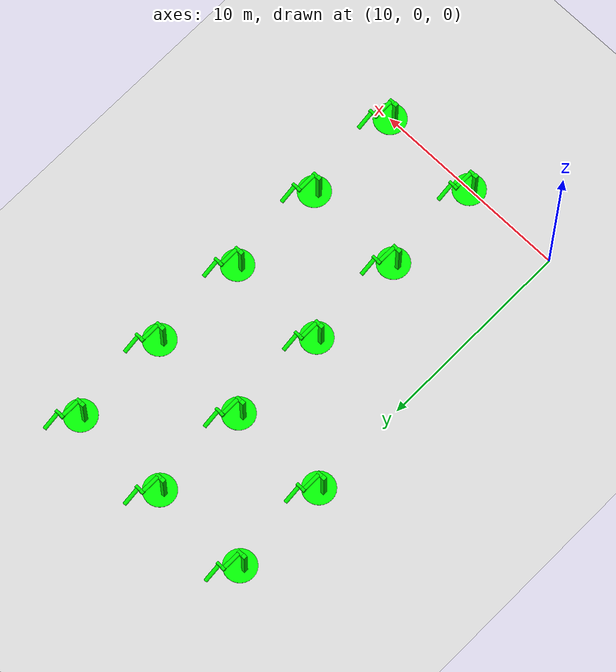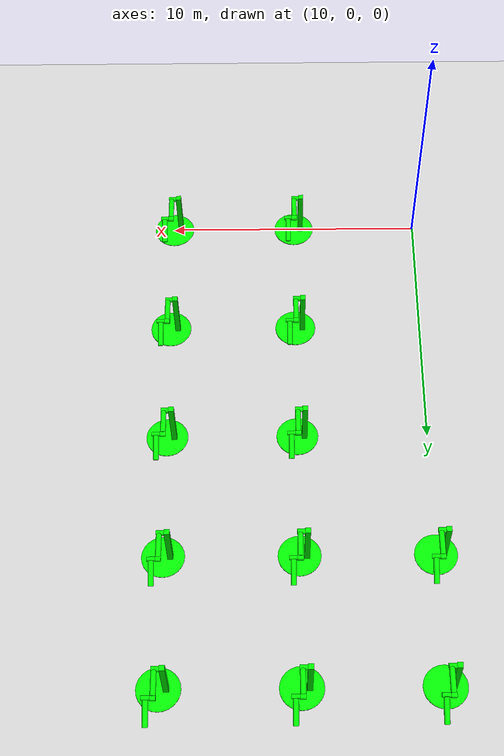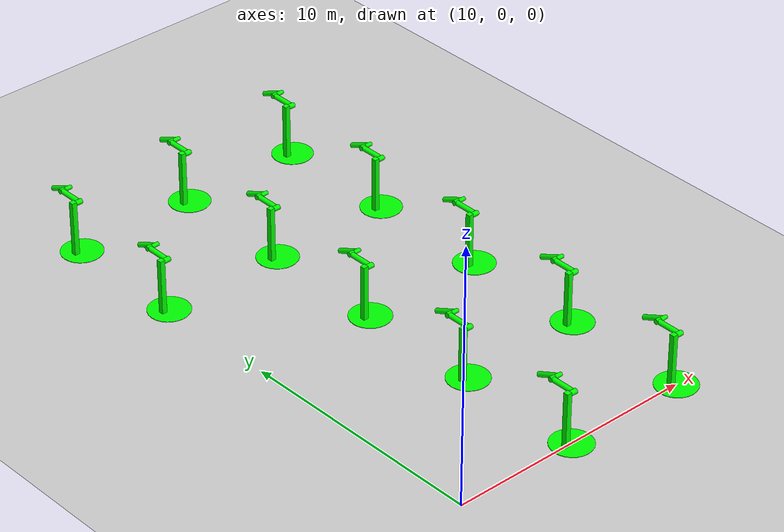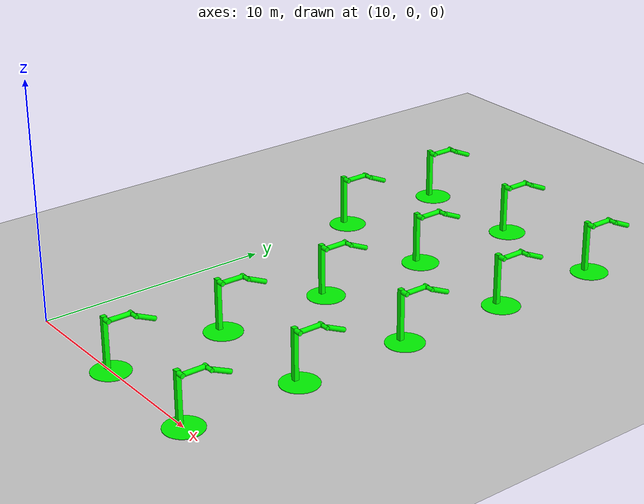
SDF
<sdf version="1.6">
 <world name="double_pendulums">
  <model name="ground_plane">
   <static>true</static>
   <link name="link">
    <collision name="collision">
     <geometry><plane><normal>0 0 1</normal><size>100 100</size></plane></geometry>
    </collision>
    <visual name="visual">
     <geometry><plane><normal>0 0 1</normal><size>100 100</size></plane></geometry>
     <material>
      <ambient>0.8 0.8 0.8 1</ambient>
      <diffuse>0.8 0.8 0.8 1</diffuse>
      <specular>0.8 0.8 0.8 1</specular>
     </material>
    </visual>
   </link>
  </model>
  <model name="dbl_pendulum_8">
   <pose>15 0 0 0 0 0</pose>
   <link name="base">
    <inertial><mass>100</mass></inertial>
    <visual name="vis_plate_on_ground">
     <pose>0 0 0.01 0 0 0</pose>
     <geometry><cylinder><radius>0.8</radius><length>0.02</length></cylinder></geometry>
     <material><ambient>0 1 0 1</ambient><diffuse>0 1 0 1</diffuse><specular>0 1 0 1</specular></material>
    </visual>
    <visual name="vis_pole">
     <pose>-0.275 0 1.1 0 0 0</pose>
     <geometry><box><size>0.2 0.2 2.2</size></box></geometry>
     <material><ambient>0 1 0 1</ambient><diffuse>0 1 0 1</diffuse><specular>0 1 0 1</specular></material>
    </visual>
    <collision name="col_plate_on_ground">
     <pose>0 0 0.01 0 0 0</pose>
     <geometry><cylinder><radius>0.8</radius><length>0.02</length></cylinder></geometry>
    </collision>
    <collision name="col_pole">
     <pose>-0.275 0 1.1 0 0 0</pose>
     <geometry><box><size>0.2 0.2 2.2</size></box></geometry>
    </collision>
   </link>
   <link name="upper_link">
    <pose>0 0 2.1 -1.5708 0 0</pose>
    <inertial><pose>0 0 0.5 0 0 0</pose></inertial>
    <visual name="vis_upper_joint">
     <pose>-0.05 0 0 0 1.5708 0</pose>
     <geometry><cylinder><radius>0.1</radius><length>0.3</length></cylinder></geometry>
     <material><ambient>0 1 0 1</ambient><diffuse>0 1 0 1</diffuse><specular>0 1 0 1</specular></material>
    </visual>
    <visual name="vis_lower_joint">
     <pose>0 0 1.0 0 1.5708 0</pose>
     <geometry><cylinder><radius>0.1</radius><length>0.2</length></cylinder></geometry>
     <material><ambient>0 1 0 1</ambient><diffuse>0 1 0 1</diffuse><specular>0 1 0 1</specular></material>
    </visual>
    <visual name="vis_cylinder">
     <pose>0 0 0.5 0 0 0</pose>
     <geometry><cylinder><radius>0.1</radius><length>0.9</length></cylinder></geometry>
     <material><ambient>0 1 0 1</ambient><diffuse>0 1 0 1</diffuse><specular>0 1 0 1</specular></material>
    </visual>
    <collision name="col_upper_joint">
     <pose>-0.05 0 0 0 1.5708 0</pose>
     <geometry><cylinder><radius>0.1</radius><length>0.3</length></cylinder></geometry>
    </collision>
    <collision name="col_lower_joint">
     <pose>0 0 1.0 0 1.5708 0</pose>
     <geometry><cylinder><radius>0.1</radius><length>0.2</length></cylinder></geometry>
    </collision>
    <collision name="col_cylinder">
     <pose>0 0 0.5 0 0 0</pose>
     <geometry><cylinder><radius>0.1</radius><length>0.9</length></cylinder></geometry>
    </collision>
   </link>
   <link name="lower_link">
    <pose>0.25 1.0 2.1 -2 0 0</pose>
    <inertial><pose>0 0 0.5 0 0 0</pose></inertial>
    <visual name="vis_lower_joint">
     <pose>0 0 0 0 1.5708 0</pose>
     <geometry><cylinder><radius>0.08</radius><length>0.3</length></cylinder></geometry>
     <material><ambient>0 1 0 1</ambient><diffuse>0 1 0 1</diffuse><specular>0 1 0 1</specular></material>
    </visual>
    <visual name="vis_cylinder">
     <pose>0 0 0.5 0 0 0</pose>
     <geometry><cylinder><radius>0.1</radius><length>0.9</length></cylinder></geometry>
     <material><ambient>0 1 0 1</ambient><diffuse>0 1 0 1</diffuse><specular>0 1 0 1</specular></material>
    </visual>
    <collision name="col_lower_joint">
     <pose>0 0 0 0 1.5708 0</pose>
     <geometry><cylinder><radius>0.08</radius><length>0.3</length></cylinder></geometry>
    </collision>
    <collision name="col_cylinder">
     <pose>0 0 0.5 0 0 0</pose>
     <geometry><cylinder><radius>0.1</radius><length>0.9</length></cylinder></geometry>
    </collision>
   </link>
   <joint name="upper_joint" type="revolute">
    <parent>base</parent>
    <child>upper_link</child>
    <axis><xyz>1.0 0 0</xyz></axis>
   </joint>
   <joint name="lower_joint" type="revolute">
    <parent>upper_link</parent>
    <child>lower_link</child>
    <axis><xyz>1.0 0 0</xyz></axis>
   </joint>
  </model>
  <model name="dbl_pendulum_9">
   <pose>20 0 0 0 0 0</pose>
   <link name="base">
    <inertial><mass>100</mass></inertial>
    <visual name="vis_plate_on_ground">
     <pose>0 0 0.01 0 0 0</pose>
     <geometry><cylinder><radius>0.8</radius><length>0.02</length></cylinder></geometry>
     <material><ambient>0 1 0 1</ambient><diffuse>0 1 0 1</diffuse><specular>0 1 0 1</specular></material>
    </visual>
    <visual name="vis_pole">
     <pose>-0.275 0 1.1 0 0 0</pose>
     <geometry><box><size>0.2 0.2 2.2</size></box></geometry>
     <material><ambient>0 1 0 1</ambient><diffuse>0 1 0 1</diffuse><specular>0 1 0 1</specular></material>
    </visual>
    <collision name="col_plate_on_ground">
     <pose>0 0 0.01 0 0 0</pose>
     <geometry><cylinder><radius>0.8</radius><length>0.02</length></cylinder></geometry>
    </collision>
    <collision name="col_pole">
     <pose>-0.275 0 1.1 0 0 0</pose>
     <geometry><box><size>0.2 0.2 2.2</size></box></geometry>
    </collision>
   </link>
   <link name="upper_link">
    <pose>0 0 2.1 -1.5708 0 0</pose>
    <inertial><pose>0 0 0.5 0 0 0</pose></inertial>
    <visual name="vis_upper_joint">
     <pose>-0.05 0 0 0 1.5708 0</pose>
     <geometry><cylinder><radius>0.1</radius><length>0.3</length></cylinder></geometry>
     <material><ambient>0 1 0 1</ambient><diffuse>0 1 0 1</diffuse><specular>0 1 0 1</specular></material>
    </visual>
    <visual name="vis_lower_joint">
     <pose>0 0 1.0 0 1.5708 0</pose>
     <geometry><cylinder><radius>0.1</radius><length>0.2</length></cylinder></geometry>
     <material><ambient>0 1 0 1</ambient><diffuse>0 1 0 1</diffuse><specular>0 1 0 1</specular></material>
    </visual>
    <visual name="vis_cylinder">
     <pose>0 0 0.5 0 0 0</pose>
     <geometry><cylinder><radius>0.1</radius><length>0.9</length></cylinder></geometry>
     <material><ambient>0 1 0 1</ambient><diffuse>0 1 0 1</diffuse><specular>0 1 0 1</specular></material>
    </visual>
    <collision name="col_upper_joint">
     <pose>-0.05 0 0 0 1.5708 0</pose>
     <geometry><cylinder><radius>0.1</radius><length>0.3</length></cylinder></geometry>
    </collision>
    <collision name="col_lower_joint">
     <pose>0 0 1.0 0 1.5708 0</pose>
     <geometry><cylinder><radius>0.1</radius><length>0.2</length></cylinder></geometry>
    </collision>
    <collision name="col_cylinder">
     <pose>0 0 0.5 0 0 0</pose>
     <geometry><cylinder><radius>0.1</radius><length>0.9</length></cylinder></geometry>
    </collision>
   </link>
   <link name="lower_link">
    <pose>0.25 1.0 2.1 -2 0 0</pose>
    <inertial><pose>0 0 0.5 0 0 0</pose></inertial>
    <visual name="vis_lower_joint">
     <pose>0 0 0 0 1.5708 0</pose>
     <geometry><cylinder><radius>0.08</radius><length>0.3</length></cylinder></geometry>
     <material><ambient>0 1 0 1</ambient><diffuse>0 1 0 1</diffuse><specular>0 1 0 1</specular></material>
    </visual>
    <visual name="vis_cylinder">
     <pose>0 0 0.5 0 0 0</pose>
     <geometry><cylinder><radius>0.1</radius><length>0.9</length></cylinder></geometry>
     <material><ambient>0 1 0 1</ambient><diffuse>0 1 0 1</diffuse><specular>0 1 0 1</specular></material>
    </visual>
    <collision name="col_lower_joint">
     <pose>0 0 0 0 1.5708 0</pose>
     <geometry><cylinder><radius>0.08</radius><length>0.3</length></cylinder></geometry>
    </collision>
    <collision name="col_cylinder">
     <pose>0 0 0.5 0 0 0</pose>
     <geometry><cylinder><radius>0.1</radius><length>0.9</length></cylinder></geometry>
    </collision>
   </link>
   <joint name="upper_joint" type="revolute">
    <parent>base</parent>
    <child>upper_link</child>
    <axis><xyz>1.0 0 0</xyz></axis>
   </joint>
   <joint name="lower_joint" type="revolute">
    <parent>upper_link</parent>
    <child>lower_link</child>
    <axis><xyz>1.0 0 0</xyz></axis>
   </joint>
  </model>
  <model name="dbl_pendulum_18">
   <pose>15 5 0 0 0 0</pose>
   <link name="base">
    <inertial><mass>100</mass></inertial>
    <visual name="vis_plate_on_ground">
     <pose>0 0 0.01 0 0 0</pose>
     <geometry><cylinder><radius>0.8</radius><length>0.02</length></cylinder></geometry>
     <material><ambient>0 1 0 1</ambient><diffuse>0 1 0 1</diffuse><specular>0 1 0 1</specular></material>
    </visual>
    <visual name="vis_pole">
     <pose>-0.275 0 1.1 0 0 0</pose>
     <geometry><box><size>0.2 0.2 2.2</size></box></geometry>
     <material><ambient>0 1 0 1</ambient><diffuse>0 1 0 1</diffuse><specular>0 1 0 1</specular></material>
    </visual>
    <collision name="col_plate_on_ground">
     <pose>0 0 0.01 0 0 0</pose>
     <geometry><cylinder><radius>0.8</radius><length>0.02</length></cylinder></geometry>
    </collision>
    <collision name="col_pole">
     <pose>-0.275 0 1.1 0 0 0</pose>
     <geometry><box><size>0.2 0.2 2.2</size></box></geometry>
    </collision>
   </link>
   <link name="upper_link">
    <pose>0 0 2.1 -1.5708 0 0</pose>
    <inertial><pose>0 0 0.5 0 0 0</pose></inertial>
    <visual name="vis_upper_joint">
     <pose>-0.05 0 0 0 1.5708 0</pose>
     <geometry><cylinder><radius>0.1</radius><length>0.3</length></cylinder></geometry>
     <material><ambient>0 1 0 1</ambient><diffuse>0 1 0 1</diffuse><specular>0 1 0 1</specular></material>
    </visual>
    <visual name="vis_lower_joint">
     <pose>0 0 1.0 0 1.5708 0</pose>
     <geometry><cylinder><radius>0.1</radius><length>0.2</length></cylinder></geometry>
     <material><ambient>0 1 0 1</ambient><diffuse>0 1 0 1</diffuse><specular>0 1 0 1</specular></material>
    </visual>
    <visual name="vis_cylinder">
     <pose>0 0 0.5 0 0 0</pose>
     <geometry><cylinder><radius>0.1</radius><length>0.9</length></cylinder></geometry>
     <material><ambient>0 1 0 1</ambient><diffuse>0 1 0 1</diffuse><specular>0 1 0 1</specular></material>
    </visual>
    <collision name="col_upper_joint">
     <pose>-0.05 0 0 0 1.5708 0</pose>
     <geometry><cylinder><radius>0.1</radius><length>0.3</length></cylinder></geometry>
    </collision>
    <collision name="col_lower_joint">
     <pose>0 0 1.0 0 1.5708 0</pose>
     <geometry><cylinder><radius>0.1</radius><length>0.2</length></cylinder></geometry>
    </collision>
    <collision name="col_cylinder">
     <pose>0 0 0.5 0 0 0</pose>
     <geometry><cylinder><radius>0.1</radius><length>0.9</length></cylinder></geometry>
    </collision>
   </link>
   <link name="lower_link">
    <pose>0.25 1.0 2.1 -2 0 0</pose>
    <inertial><pose>0 0 0.5 0 0 0</pose></inertial>
    <visual name="vis_lower_joint">
     <pose>0 0 0 0 1.5708 0</pose>
     <geometry><cylinder><radius>0.08</radius><length>0.3</length></cylinder></geometry>
     <material><ambient>0 1 0 1</ambient><diffuse>0 1 0 1</diffuse><specular>0 1 0 1</specular></material>
    </visual>
    <visual name="vis_cylinder">
     <pose>0 0 0.5 0 0 0</pose>
     <geometry><cylinder><radius>0.1</radius><length>0.9</length></cylinder></geometry>
     <material><ambient>0 1 0 1</ambient><diffuse>0 1 0 1</diffuse><specular>0 1 0 1</specular></material>
    </visual>
    <collision name="col_lower_joint">
     <pose>0 0 0 0 1.5708 0</pose>
     <geometry><cylinder><radius>0.08</radius><length>0.3</length></cylinder></geometry>
    </collision>
    <collision name="col_cylinder">
     <pose>0 0 0.5 0 0 0</pose>
     <geometry><cylinder><radius>0.1</radius><length>0.9</length></cylinder></geometry>
    </collision>
   </link>
   <joint name="upper_joint" type="revolute">
    <parent>base</parent>
    <child>upper_link</child>
    <axis><xyz>1.0 0 0</xyz></axis>
   </joint>
   <joint name="lower_joint" type="revolute">
    <parent>upper_link</parent>
    <child>lower_link</child>
    <axis><xyz>1.0 0 0</xyz></axis>
   </joint>
  </model>
  <model name="dbl_pendulum_19">
   <pose>20 5 0 0 0 0</pose>
   <link name="base">
    <inertial><mass>100</mass></inertial>
    <visual name="vis_plate_on_ground">
     <pose>0 0 0.01 0 0 0</pose>
     <geometry><cylinder><radius>0.8</radius><length>0.02</length></cylinder></geometry>
     <material><ambient>0 1 0 1</ambient><diffuse>0 1 0 1</diffuse><specular>0 1 0 1</specular></material>
    </visual>
    <visual name="vis_pole">
     <pose>-0.275 0 1.1 0 0 0</pose>
     <geometry><box><size>0.2 0.2 2.2</size></box></geometry>
     <material><ambient>0 1 0 1</ambient><diffuse>0 1 0 1</diffuse><specular>0 1 0 1</specular></material>
    </visual>
    <collision name="col_plate_on_ground">
     <pose>0 0 0.01 0 0 0</pose>
     <geometry><cylinder><radius>0.8</radius><length>0.02</length></cylinder></geometry>
    </collision>
    <collision name="col_pole">
     <pose>-0.275 0 1.1 0 0 0</pose>
     <geometry><box><size>0.2 0.2 2.2</size></box></geometry>
    </collision>
   </link>
   <link name="upper_link">
    <pose>0 0 2.1 -1.5708 0 0</pose>
    <inertial><pose>0 0 0.5 0 0 0</pose></inertial>
    <visual name="vis_upper_joint">
     <pose>-0.05 0 0 0 1.5708 0</pose>
     <geometry><cylinder><radius>0.1</radius><length>0.3</length></cylinder></geometry>
     <material><ambient>0 1 0 1</ambient><diffuse>0 1 0 1</diffuse><specular>0 1 0 1</specular></material>
    </visual>
    <visual name="vis_lower_joint">
     <pose>0 0 1.0 0 1.5708 0</pose>
     <geometry><cylinder><radius>0.1</radius><length>0.2</length></cylinder></geometry>
     <material><ambient>0 1 0 1</ambient><diffuse>0 1 0 1</diffuse><specular>0 1 0 1</specular></material>
    </visual>
    <visual name="vis_cylinder">
     <pose>0 0 0.5 0 0 0</pose>
     <geometry><cylinder><radius>0.1</radius><length>0.9</length></cylinder></geometry>
     <material><ambient>0 1 0 1</ambient><diffuse>0 1 0 1</diffuse><specular>0 1 0 1</specular></material>
    </visual>
    <collision name="col_upper_joint">
     <pose>-0.05 0 0 0 1.5708 0</pose>
     <geometry><cylinder><radius>0.1</radius><length>0.3</length></cylinder></geometry>
    </collision>
    <collision name="col_lower_joint">
     <pose>0 0 1.0 0 1.5708 0</pose>
     <geometry><cylinder><radius>0.1</radius><length>0.2</length></cylinder></geometry>
    </collision>
    <collision name="col_cylinder">
     <pose>0 0 0.5 0 0 0</pose>
     <geometry><cylinder><radius>0.1</radius><length>0.9</length></cylinder></geometry>
    </collision>
   </link>
   <link name="lower_link">
    <pose>0.25 1.0 2.1 -2 0 0</pose>
    <inertial><pose>0 0 0.5 0 0 0</pose></inertial>
    <visual name="vis_lower_joint">
     <pose>0 0 0 0 1.5708 0</pose>
     <geometry><cylinder><radius>0.08</radius><length>0.3</length></cylinder></geometry>
     <material><ambient>0 1 0 1</ambient><diffuse>0 1 0 1</diffuse><specular>0 1 0 1</specular></material>
    </visual>
    <visual name="vis_cylinder">
     <pose>0 0 0.5 0 0 0</pose>
     <geometry><cylinder><radius>0.1</radius><length>0.9</length></cylinder></geometry>
     <material><ambient>0 1 0 1</ambient><diffuse>0 1 0 1</diffuse><specular>0 1 0 1</specular></material>
    </visual>
    <collision name="col_lower_joint">
     <pose>0 0 0 0 1.5708 0</pose>
     <geometry><cylinder><radius>0.08</radius><length>0.3</length></cylinder></geometry>
    </collision>
    <collision name="col_cylinder">
     <pose>0 0 0.5 0 0 0</pose>
     <geometry><cylinder><radius>0.1</radius><length>0.9</length></cylinder></geometry>
    </collision>
   </link>
   <joint name="upper_joint" type="revolute">
    <parent>base</parent>
    <child>upper_link</child>
    <axis><xyz>1.0 0 0</xyz></axis>
   </joint>
   <joint name="lower_joint" type="revolute">
    <parent>upper_link</parent>
    <child>lower_link</child>
    <axis><xyz>1.0 0 0</xyz></axis>
   </joint>
  </model>
  <model name="dbl_pendulum_28">
   <pose>15 10 0 0 0 0</pose>
   <link name="base">
    <inertial><mass>100</mass></inertial>
    <visual name="vis_plate_on_ground">
     <pose>0 0 0.01 0 0 0</pose>
     <geometry><cylinder><radius>0.8</radius><length>0.02</length></cylinder></geometry>
     <material><ambient>0 1 0 1</ambient><diffuse>0 1 0 1</diffuse><specular>0 1 0 1</specular></material>
    </visual>
    <visual name="vis_pole">
     <pose>-0.275 0 1.1 0 0 0</pose>
     <geometry><box><size>0.2 0.2 2.2</size></box></geometry>
     <material><ambient>0 1 0 1</ambient><diffuse>0 1 0 1</diffuse><specular>0 1 0 1</specular></material>
    </visual>
    <collision name="col_plate_on_ground">
     <pose>0 0 0.01 0 0 0</pose>
     <geometry><cylinder><radius>0.8</radius><length>0.02</length></cylinder></geometry>
    </collision>
    <collision name="col_pole">
     <pose>-0.275 0 1.1 0 0 0</pose>
     <geometry><box><size>0.2 0.2 2.2</size></box></geometry>
    </collision>
   </link>
   <link name="upper_link">
    <pose>0 0 2.1 -1.5708 0 0</pose>
    <inertial><pose>0 0 0.5 0 0 0</pose></inertial>
    <visual name="vis_upper_joint">
     <pose>-0.05 0 0 0 1.5708 0</pose>
     <geometry><cylinder><radius>0.1</radius><length>0.3</length></cylinder></geometry>
     <material><ambient>0 1 0 1</ambient><diffuse>0 1 0 1</diffuse><specular>0 1 0 1</specular></material>
    </visual>
    <visual name="vis_lower_joint">
     <pose>0 0 1.0 0 1.5708 0</pose>
     <geometry><cylinder><radius>0.1</radius><length>0.2</length></cylinder></geometry>
     <material><ambient>0 1 0 1</ambient><diffuse>0 1 0 1</diffuse><specular>0 1 0 1</specular></material>
    </visual>
    <visual name="vis_cylinder">
     <pose>0 0 0.5 0 0 0</pose>
     <geometry><cylinder><radius>0.1</radius><length>0.9</length></cylinder></geometry>
     <material><ambient>0 1 0 1</ambient><diffuse>0 1 0 1</diffuse><specular>0 1 0 1</specular></material>
    </visual>
    <collision name="col_upper_joint">
     <pose>-0.05 0 0 0 1.5708 0</pose>
     <geometry><cylinder><radius>0.1</radius><length>0.3</length></cylinder></geometry>
    </collision>
    <collision name="col_lower_joint">
     <pose>0 0 1.0 0 1.5708 0</pose>
     <geometry><cylinder><radius>0.1</radius><length>0.2</length></cylinder></geometry>
    </collision>
    <collision name="col_cylinder">
     <pose>0 0 0.5 0 0 0</pose>
     <geometry><cylinder><radius>0.1</radius><length>0.9</length></cylinder></geometry>
    </collision>
   </link>
   <link name="lower_link">
    <pose>0.25 1.0 2.1 -2 0 0</pose>
    <inertial><pose>0 0 0.5 0 0 0</pose></inertial>
    <visual name="vis_lower_joint">
     <pose>0 0 0 0 1.5708 0</pose>
     <geometry><cylinder><radius>0.08</radius><length>0.3</length></cylinder></geometry>
     <material><ambient>0 1 0 1</ambient><diffuse>0 1 0 1</diffuse><specular>0 1 0 1</specular></material>
    </visual>
    <visual name="vis_cylinder">
     <pose>0 0 0.5 0 0 0</pose>
     <geometry><cylinder><radius>0.1</radius><length>0.9</length></cylinder></geometry>
     <material><ambient>0 1 0 1</ambient><diffuse>0 1 0 1</diffuse><specular>0 1 0 1</specular></material>
    </visual>
    <collision name="col_lower_joint">
     <pose>0 0 0 0 1.5708 0</pose>
     <geometry><cylinder><radius>0.08</radius><length>0.3</length></cylinder></geometry>
    </collision>
    <collision name="col_cylinder">
     <pose>0 0 0.5 0 0 0</pose>
     <geometry><cylinder><radius>0.1</radius><length>0.9</length></cylinder></geometry>
    </collision>
   </link>
   <joint name="upper_joint" type="revolute">
    <parent>base</parent>
    <child>upper_link</child>
    <axis><xyz>1.0 0 0</xyz></axis>
   </joint>
   <joint name="lower_joint" type="revolute">
    <parent>upper_link</parent>
    <child>lower_link</child>
    <axis><xyz>1.0 0 0</xyz></axis>
   </joint>
  </model>
  <model name="dbl_pendulum_29">
   <pose>20 10 0 0 0 0</pose>
   <link name="base">
    <inertial><mass>100</mass></inertial>
    <visual name="vis_plate_on_ground">
     <pose>0 0 0.01 0 0 0</pose>
     <geometry><cylinder><radius>0.8</radius><length>0.02</length></cylinder></geometry>
     <material><ambient>0 1 0 1</ambient><diffuse>0 1 0 1</diffuse><specular>0 1 0 1</specular></material>
    </visual>
    <visual name="vis_pole">
     <pose>-0.275 0 1.1 0 0 0</pose>
     <geometry><box><size>0.2 0.2 2.2</size></box></geometry>
     <material><ambient>0 1 0 1</ambient><diffuse>0 1 0 1</diffuse><specular>0 1 0 1</specular></material>
    </visual>
    <collision name="col_plate_on_ground">
     <pose>0 0 0.01 0 0 0</pose>
     <geometry><cylinder><radius>0.8</radius><length>0.02</length></cylinder></geometry>
    </collision>
    <collision name="col_pole">
     <pose>-0.275 0 1.1 0 0 0</pose>
     <geometry><box><size>0.2 0.2 2.2</size></box></geometry>
    </collision>
   </link>
   <link name="upper_link">
    <pose>0 0 2.1 -1.5708 0 0</pose>
    <inertial><pose>0 0 0.5 0 0 0</pose></inertial>
    <visual name="vis_upper_joint">
     <pose>-0.05 0 0 0 1.5708 0</pose>
     <geometry><cylinder><radius>0.1</radius><length>0.3</length></cylinder></geometry>
     <material><ambient>0 1 0 1</ambient><diffuse>0 1 0 1</diffuse><specular>0 1 0 1</specular></material>
    </visual>
    <visual name="vis_lower_joint">
     <pose>0 0 1.0 0 1.5708 0</pose>
     <geometry><cylinder><radius>0.1</radius><length>0.2</length></cylinder></geometry>
     <material><ambient>0 1 0 1</ambient><diffuse>0 1 0 1</diffuse><specular>0 1 0 1</specular></material>
    </visual>
    <visual name="vis_cylinder">
     <pose>0 0 0.5 0 0 0</pose>
     <geometry><cylinder><radius>0.1</radius><length>0.9</length></cylinder></geometry>
     <material><ambient>0 1 0 1</ambient><diffuse>0 1 0 1</diffuse><specular>0 1 0 1</specular></material>
    </visual>
    <collision name="col_upper_joint">
     <pose>-0.05 0 0 0 1.5708 0</pose>
     <geometry><cylinder><radius>0.1</radius><length>0.3</length></cylinder></geometry>
    </collision>
    <collision name="col_lower_joint">
     <pose>0 0 1.0 0 1.5708 0</pose>
     <geometry><cylinder><radius>0.1</radius><length>0.2</length></cylinder></geometry>
    </collision>
    <collision name="col_cylinder">
     <pose>0 0 0.5 0 0 0</pose>
     <geometry><cylinder><radius>0.1</radius><length>0.9</length></cylinder></geometry>
    </collision>
   </link>
   <link name="lower_link">
    <pose>0.25 1.0 2.1 -2 0 0</pose>
    <inertial><pose>0 0 0.5 0 0 0</pose></inertial>
    <visual name="vis_lower_joint">
     <pose>0 0 0 0 1.5708 0</pose>
     <geometry><cylinder><radius>0.08</radius><length>0.3</length></cylinder></geometry>
     <material><ambient>0 1 0 1</ambient><diffuse>0 1 0 1</diffuse><specular>0 1 0 1</specular></material>
    </visual>
    <visual name="vis_cylinder">
     <pose>0 0 0.5 0 0 0</pose>
     <geometry><cylinder><radius>0.1</radius><length>0.9</length></cylinder></geometry>
     <material><ambient>0 1 0 1</ambient><diffuse>0 1 0 1</diffuse><specular>0 1 0 1</specular></material>
    </visual>
    <collision name="col_lower_joint">
     <pose>0 0 0 0 1.5708 0</pose>
     <geometry><cylinder><radius>0.08</radius><length>0.3</length></cylinder></geometry>
    </collision>
    <collision name="col_cylinder">
     <pose>0 0 0.5 0 0 0</pose>
     <geometry><cylinder><radius>0.1</radius><length>0.9</length></cylinder></geometry>
    </collision>
   </link>
   <joint name="upper_joint" type="revolute">
    <parent>base</parent>
    <child>upper_link</child>
    <axis><xyz>1.0 0 0</xyz></axis>
   </joint>
   <joint name="lower_joint" type="revolute">
    <parent>upper_link</parent>
    <child>lower_link</child>
    <axis><xyz>1.0 0 0</xyz></axis>
   </joint>
  </model>
  <model name="dbl_pendulum_37">
   <pose>10 15 0 0 0 0</pose>
   <link name="base">
    <inertial><mass>100</mass></inertial>
    <visual name="vis_plate_on_ground">
     <pose>0 0 0.01 0 0 0</pose>
     <geometry><cylinder><radius>0.8</radius><length>0.02</length></cylinder></geometry>
     <material><ambient>0 1 0 1</ambient><diffuse>0 1 0 1</diffuse><specular>0 1 0 1</specular></material>
    </visual>
    <visual name="vis_pole">
     <pose>-0.275 0 1.1 0 0 0</pose>
     <geometry><box><size>0.2 0.2 2.2</size></box></geometry>
     <material><ambient>0 1 0 1</ambient><diffuse>0 1 0 1</diffuse><specular>0 1 0 1</specular></material>
    </visual>
    <collision name="col_plate_on_ground">
     <pose>0 0 0.01 0 0 0</pose>
     <geometry><cylinder><radius>0.8</radius><length>0.02</length></cylinder></geometry>
    </collision>
    <collision name="col_pole">
     <pose>-0.275 0 1.1 0 0 0</pose>
     <geometry><box><size>0.2 0.2 2.2</size></box></geometry>
    </collision>
   </link>
   <link name="upper_link">
    <pose>0 0 2.1 -1.5708 0 0</pose>
    <inertial><pose>0 0 0.5 0 0 0</pose></inertial>
    <visual name="vis_upper_joint">
     <pose>-0.05 0 0 0 1.5708 0</pose>
     <geometry><cylinder><radius>0.1</radius><length>0.3</length></cylinder></geometry>
     <material><ambient>0 1 0 1</ambient><diffuse>0 1 0 1</diffuse><specular>0 1 0 1</specular></material>
    </visual>
    <visual name="vis_lower_joint">
     <pose>0 0 1.0 0 1.5708 0</pose>
     <geometry><cylinder><radius>0.1</radius><length>0.2</length></cylinder></geometry>
     <material><ambient>0 1 0 1</ambient><diffuse>0 1 0 1</diffuse><specular>0 1 0 1</specular></material>
    </visual>
    <visual name="vis_cylinder">
     <pose>0 0 0.5 0 0 0</pose>
     <geometry><cylinder><radius>0.1</radius><length>0.9</length></cylinder></geometry>
     <material><ambient>0 1 0 1</ambient><diffuse>0 1 0 1</diffuse><specular>0 1 0 1</specular></material>
    </visual>
    <collision name="col_upper_joint">
     <pose>-0.05 0 0 0 1.5708 0</pose>
     <geometry><cylinder><radius>0.1</radius><length>0.3</length></cylinder></geometry>
    </collision>
    <collision name="col_lower_joint">
     <pose>0 0 1.0 0 1.5708 0</pose>
     <geometry><cylinder><radius>0.1</radius><length>0.2</length></cylinder></geometry>
    </collision>
    <collision name="col_cylinder">
     <pose>0 0 0.5 0 0 0</pose>
     <geometry><cylinder><radius>0.1</radius><length>0.9</length></cylinder></geometry>
    </collision>
   </link>
   <link name="lower_link">
    <pose>0.25 1.0 2.1 -2 0 0</pose>
    <inertial><pose>0 0 0.5 0 0 0</pose></inertial>
    <visual name="vis_lower_joint">
     <pose>0 0 0 0 1.5708 0</pose>
     <geometry><cylinder><radius>0.08</radius><length>0.3</length></cylinder></geometry>
     <material><ambient>0 1 0 1</ambient><diffuse>0 1 0 1</diffuse><specular>0 1 0 1</specular></material>
    </visual>
    <visual name="vis_cylinder">
     <pose>0 0 0.5 0 0 0</pose>
     <geometry><cylinder><radius>0.1</radius><length>0.9</length></cylinder></geometry>
     <material><ambient>0 1 0 1</ambient><diffuse>0 1 0 1</diffuse><specular>0 1 0 1</specular></material>
    </visual>
    <collision name="col_lower_joint">
     <pose>0 0 0 0 1.5708 0</pose>
     <geometry><cylinder><radius>0.08</radius><length>0.3</length></cylinder></geometry>
    </collision>
    <collision name="col_cylinder">
     <pose>0 0 0.5 0 0 0</pose>
     <geometry><cylinder><radius>0.1</radius><length>0.9</length></cylinder></geometry>
    </collision>
   </link>
   <joint name="upper_joint" type="revolute">
    <parent>base</parent>
    <child>upper_link</child>
    <axis><xyz>1.0 0 0</xyz></axis>
   </joint>
   <joint name="lower_joint" type="revolute">
    <parent>upper_link</parent>
    <child>lower_link</child>
    <axis><xyz>1.0 0 0</xyz></axis>
   </joint>
  </model>
  <model name="dbl_pendulum_38">
   <pose>15 15 0 0 0 0</pose>
   <link name="base">
    <inertial><mass>100</mass></inertial>
    <visual name="vis_plate_on_ground">
     <pose>0 0 0.01 0 0 0</pose>
     <geometry><cylinder><radius>0.8</radius><length>0.02</length></cylinder></geometry>
     <material><ambient>0 1 0 1</ambient><diffuse>0 1 0 1</diffuse><specular>0 1 0 1</specular></material>
    </visual>
    <visual name="vis_pole">
     <pose>-0.275 0 1.1 0 0 0</pose>
     <geometry><box><size>0.2 0.2 2.2</size></box></geometry>
     <material><ambient>0 1 0 1</ambient><diffuse>0 1 0 1</diffuse><specular>0 1 0 1</specular></material>
    </visual>
    <collision name="col_plate_on_ground">
     <pose>0 0 0.01 0 0 0</pose>
     <geometry><cylinder><radius>0.8</radius><length>0.02</length></cylinder></geometry>
    </collision>
    <collision name="col_pole">
     <pose>-0.275 0 1.1 0 0 0</pose>
     <geometry><box><size>0.2 0.2 2.2</size></box></geometry>
    </collision>
   </link>
   <link name="upper_link">
    <pose>0 0 2.1 -1.5708 0 0</pose>
    <inertial><pose>0 0 0.5 0 0 0</pose></inertial>
    <visual name="vis_upper_joint">
     <pose>-0.05 0 0 0 1.5708 0</pose>
     <geometry><cylinder><radius>0.1</radius><length>0.3</length></cylinder></geometry>
     <material><ambient>0 1 0 1</ambient><diffuse>0 1 0 1</diffuse><specular>0 1 0 1</specular></material>
    </visual>
    <visual name="vis_lower_joint">
     <pose>0 0 1.0 0 1.5708 0</pose>
     <geometry><cylinder><radius>0.1</radius><length>0.2</length></cylinder></geometry>
     <material><ambient>0 1 0 1</ambient><diffuse>0 1 0 1</diffuse><specular>0 1 0 1</specular></material>
    </visual>
    <visual name="vis_cylinder">
     <pose>0 0 0.5 0 0 0</pose>
     <geometry><cylinder><radius>0.1</radius><length>0.9</length></cylinder></geometry>
     <material><ambient>0 1 0 1</ambient><diffuse>0 1 0 1</diffuse><specular>0 1 0 1</specular></material>
    </visual>
    <collision name="col_upper_joint">
     <pose>-0.05 0 0 0 1.5708 0</pose>
     <geometry><cylinder><radius>0.1</radius><length>0.3</length></cylinder></geometry>
    </collision>
    <collision name="col_lower_joint">
     <pose>0 0 1.0 0 1.5708 0</pose>
     <geometry><cylinder><radius>0.1</radius><length>0.2</length></cylinder></geometry>
    </collision>
    <collision name="col_cylinder">
     <pose>0 0 0.5 0 0 0</pose>
     <geometry><cylinder><radius>0.1</radius><length>0.9</length></cylinder></geometry>
    </collision>
   </link>
   <link name="lower_link">
    <pose>0.25 1.0 2.1 -2 0 0</pose>
    <inertial><pose>0 0 0.5 0 0 0</pose></inertial>
    <visual name="vis_lower_joint">
     <pose>0 0 0 0 1.5708 0</pose>
     <geometry><cylinder><radius>0.08</radius><length>0.3</length></cylinder></geometry>
     <material><ambient>0 1 0 1</ambient><diffuse>0 1 0 1</diffuse><specular>0 1 0 1</specular></material>
    </visual>
    <visual name="vis_cylinder">
     <pose>0 0 0.5 0 0 0</pose>
     <geometry><cylinder><radius>0.1</radius><length>0.9</length></cylinder></geometry>
     <material><ambient>0 1 0 1</ambient><diffuse>0 1 0 1</diffuse><specular>0 1 0 1</specular></material>
    </visual>
    <collision name="col_lower_joint">
     <pose>0 0 0 0 1.5708 0</pose>
     <geometry><cylinder><radius>0.08</radius><length>0.3</length></cylinder></geometry>
    </collision>
    <collision name="col_cylinder">
     <pose>0 0 0.5 0 0 0</pose>
     <geometry><cylinder><radius>0.1</radius><length>0.9</length></cylinder></geometry>
    </collision>
   </link>
   <joint name="upper_joint" type="revolute">
    <parent>base</parent>
    <child>upper_link</child>
    <axis><xyz>1.0 0 0</xyz></axis>
   </joint>
   <joint name="lower_joint" type="revolute">
    <parent>upper_link</parent>
    <child>lower_link</child>
    <axis><xyz>1.0 0 0</xyz></axis>
   </joint>
  </model>
  <model name="dbl_pendulum_39">
   <pose>20 15 0 0 0 0</pose>
   <link name="base">
    <inertial><mass>100</mass></inertial>
    <visual name="vis_plate_on_ground">
     <pose>0 0 0.01 0 0 0</pose>
     <geometry><cylinder><radius>0.8</radius><length>0.02</length></cylinder></geometry>
     <material><ambient>0 1 0 1</ambient><diffuse>0 1 0 1</diffuse><specular>0 1 0 1</specular></material>
    </visual>
    <visual name="vis_pole">
     <pose>-0.275 0 1.1 0 0 0</pose>
     <geometry><box><size>0.2 0.2 2.2</size></box></geometry>
     <material><ambient>0 1 0 1</ambient><diffuse>0 1 0 1</diffuse><specular>0 1 0 1</specular></material>
    </visual>
    <collision name="col_plate_on_ground">
     <pose>0 0 0.01 0 0 0</pose>
     <geometry><cylinder><radius>0.8</radius><length>0.02</length></cylinder></geometry>
    </collision>
    <collision name="col_pole">
     <pose>-0.275 0 1.1 0 0 0</pose>
     <geometry><box><size>0.2 0.2 2.2</size></box></geometry>
    </collision>
   </link>
   <link name="upper_link">
    <pose>0 0 2.1 -1.5708 0 0</pose>
    <inertial><pose>0 0 0.5 0 0 0</pose></inertial>
    <visual name="vis_upper_joint">
     <pose>-0.05 0 0 0 1.5708 0</pose>
     <geometry><cylinder><radius>0.1</radius><length>0.3</length></cylinder></geometry>
     <material><ambient>0 1 0 1</ambient><diffuse>0 1 0 1</diffuse><specular>0 1 0 1</specular></material>
    </visual>
    <visual name="vis_lower_joint">
     <pose>0 0 1.0 0 1.5708 0</pose>
     <geometry><cylinder><radius>0.1</radius><length>0.2</length></cylinder></geometry>
     <material><ambient>0 1 0 1</ambient><diffuse>0 1 0 1</diffuse><specular>0 1 0 1</specular></material>
    </visual>
    <visual name="vis_cylinder">
     <pose>0 0 0.5 0 0 0</pose>
     <geometry><cylinder><radius>0.1</radius><length>0.9</length></cylinder></geometry>
     <material><ambient>0 1 0 1</ambient><diffuse>0 1 0 1</diffuse><specular>0 1 0 1</specular></material>
    </visual>
    <collision name="col_upper_joint">
     <pose>-0.05 0 0 0 1.5708 0</pose>
     <geometry><cylinder><radius>0.1</radius><length>0.3</length></cylinder></geometry>
    </collision>
    <collision name="col_lower_joint">
     <pose>0 0 1.0 0 1.5708 0</pose>
     <geometry><cylinder><radius>0.1</radius><length>0.2</length></cylinder></geometry>
    </collision>
    <collision name="col_cylinder">
     <pose>0 0 0.5 0 0 0</pose>
     <geometry><cylinder><radius>0.1</radius><length>0.9</length></cylinder></geometry>
    </collision>
   </link>
   <link name="lower_link">
    <pose>0.25 1.0 2.1 -2 0 0</pose>
    <inertial><pose>0 0 0.5 0 0 0</pose></inertial>
    <visual name="vis_lower_joint">
     <pose>0 0 0 0 1.5708 0</pose>
     <geometry><cylinder><radius>0.08</radius><length>0.3</length></cylinder></geometry>
     <material><ambient>0 1 0 1</ambient><diffuse>0 1 0 1</diffuse><specular>0 1 0 1</specular></material>
    </visual>
    <visual name="vis_cylinder">
     <pose>0 0 0.5 0 0 0</pose>
     <geometry><cylinder><radius>0.1</radius><length>0.9</length></cylinder></geometry>
     <material><ambient>0 1 0 1</ambient><diffuse>0 1 0 1</diffuse><specular>0 1 0 1</specular></material>
    </visual>
    <collision name="col_lower_joint">
     <pose>0 0 0 0 1.5708 0</pose>
     <geometry><cylinder><radius>0.08</radius><length>0.3</length></cylinder></geometry>
    </collision>
    <collision name="col_cylinder">
     <pose>0 0 0.5 0 0 0</pose>
     <geometry><cylinder><radius>0.1</radius><length>0.9</length></cylinder></geometry>
    </collision>
   </link>
   <joint name="upper_joint" type="revolute">
    <parent>base</parent>
    <child>upper_link</child>
    <axis><xyz>1.0 0 0</xyz></axis>
   </joint>
   <joint name="lower_joint" type="revolute">
    <parent>upper_link</parent>
    <child>lower_link</child>
    <axis><xyz>1.0 0 0</xyz></axis>
   </joint>
  </model>
  <model name="dbl_pendulum_47">
   <pose>10 20 0 0 0 0</pose>
   <link name="base">
    <inertial><mass>100</mass></inertial>
    <visual name="vis_plate_on_ground">
     <pose>0 0 0.01 0 0 0</pose>
     <geometry><cylinder><radius>0.8</radius><length>0.02</length></cylinder></geometry>
     <material><ambient>0 1 0 1</ambient><diffuse>0 1 0 1</diffuse><specular>0 1 0 1</specular></material>
    </visual>
    <visual name="vis_pole">
     <pose>-0.275 0 1.1 0 0 0</pose>
     <geometry><box><size>0.2 0.2 2.2</size></box></geometry>
     <material><ambient>0 1 0 1</ambient><diffuse>0 1 0 1</diffuse><specular>0 1 0 1</specular></material>
    </visual>
    <collision name="col_plate_on_ground">
     <pose>0 0 0.01 0 0 0</pose>
     <geometry><cylinder><radius>0.8</radius><length>0.02</length></cylinder></geometry>
    </collision>
    <collision name="col_pole">
     <pose>-0.275 0 1.1 0 0 0</pose>
     <geometry><box><size>0.2 0.2 2.2</size></box></geometry>
    </collision>
   </link>
   <link name="upper_link">
    <pose>0 0 2.1 -1.5708 0 0</pose>
    <inertial><pose>0 0 0.5 0 0 0</pose></inertial>
    <visual name="vis_upper_joint">
     <pose>-0.05 0 0 0 1.5708 0</pose>
     <geometry><cylinder><radius>0.1</radius><length>0.3</length></cylinder></geometry>
     <material><ambient>0 1 0 1</ambient><diffuse>0 1 0 1</diffuse><specular>0 1 0 1</specular></material>
    </visual>
    <visual name="vis_lower_joint">
     <pose>0 0 1.0 0 1.5708 0</pose>
     <geometry><cylinder><radius>0.1</radius><length>0.2</length></cylinder></geometry>
     <material><ambient>0 1 0 1</ambient><diffuse>0 1 0 1</diffuse><specular>0 1 0 1</specular></material>
    </visual>
    <visual name="vis_cylinder">
     <pose>0 0 0.5 0 0 0</pose>
     <geometry><cylinder><radius>0.1</radius><length>0.9</length></cylinder></geometry>
     <material><ambient>0 1 0 1</ambient><diffuse>0 1 0 1</diffuse><specular>0 1 0 1</specular></material>
    </visual>
    <collision name="col_upper_joint">
     <pose>-0.05 0 0 0 1.5708 0</pose>
     <geometry><cylinder><radius>0.1</radius><length>0.3</length></cylinder></geometry>
    </collision>
    <collision name="col_lower_joint">
     <pose>0 0 1.0 0 1.5708 0</pose>
     <geometry><cylinder><radius>0.1</radius><length>0.2</length></cylinder></geometry>
    </collision>
    <collision name="col_cylinder">
     <pose>0 0 0.5 0 0 0</pose>
     <geometry><cylinder><radius>0.1</radius><length>0.9</length></cylinder></geometry>
    </collision>
   </link>
   <link name="lower_link">
    <pose>0.25 1.0 2.1 -2 0 0</pose>
    <inertial><pose>0 0 0.5 0 0 0</pose></inertial>
    <visual name="vis_lower_joint">
     <pose>0 0 0 0 1.5708 0</pose>
     <geometry><cylinder><radius>0.08</radius><length>0.3</length></cylinder></geometry>
     <material><ambient>0 1 0 1</ambient><diffuse>0 1 0 1</diffuse><specular>0 1 0 1</specular></material>
    </visual>
    <visual name="vis_cylinder">
     <pose>0 0 0.5 0 0 0</pose>
     <geometry><cylinder><radius>0.1</radius><length>0.9</length></cylinder></geometry>
     <material><ambient>0 1 0 1</ambient><diffuse>0 1 0 1</diffuse><specular>0 1 0 1</specular></material>
    </visual>
    <collision name="col_lower_joint">
     <pose>0 0 0 0 1.5708 0</pose>
     <geometry><cylinder><radius>0.08</radius><length>0.3</length></cylinder></geometry>
    </collision>
    <collision name="col_cylinder">
     <pose>0 0 0.5 0 0 0</pose>
     <geometry><cylinder><radius>0.1</radius><length>0.9</length></cylinder></geometry>
    </collision>
   </link>
   <joint name="upper_joint" type="revolute">
    <parent>base</parent>
    <child>upper_link</child>
    <axis><xyz>1.0 0 0</xyz></axis>
   </joint>
   <joint name="lower_joint" type="revolute">
    <parent>upper_link</parent>
    <child>lower_link</child>
    <axis><xyz>1.0 0 0</xyz></axis>
   </joint>
  </model>
  <model name="dbl_pendulum_48">
   <pose>15 20 0 0 0 0</pose>
   <link name="base">
    <inertial><mass>100</mass></inertial>
    <visual name="vis_plate_on_ground">
     <pose>0 0 0.01 0 0 0</pose>
     <geometry><cylinder><radius>0.8</radius><length>0.02</length></cylinder></geometry>
     <material><ambient>0 1 0 1</ambient><diffuse>0 1 0 1</diffuse><specular>0 1 0 1</specular></material>
    </visual>
    <visual name="vis_pole">
     <pose>-0.275 0 1.1 0 0 0</pose>
     <geometry><box><size>0.2 0.2 2.2</size></box></geometry>
     <material><ambient>0 1 0 1</ambient><diffuse>0 1 0 1</diffuse><specular>0 1 0 1</specular></material>
    </visual>
    <collision name="col_plate_on_ground">
     <pose>0 0 0.01 0 0 0</pose>
     <geometry><cylinder><radius>0.8</radius><length>0.02</length></cylinder></geometry>
    </collision>
    <collision name="col_pole">
     <pose>-0.275 0 1.1 0 0 0</pose>
     <geometry><box><size>0.2 0.2 2.2</size></box></geometry>
    </collision>
   </link>
   <link name="upper_link">
    <pose>0 0 2.1 -1.5708 0 0</pose>
    <inertial><pose>0 0 0.5 0 0 0</pose></inertial>
    <visual name="vis_upper_joint">
     <pose>-0.05 0 0 0 1.5708 0</pose>
     <geometry><cylinder><radius>0.1</radius><length>0.3</length></cylinder></geometry>
     <material><ambient>0 1 0 1</ambient><diffuse>0 1 0 1</diffuse><specular>0 1 0 1</specular></material>
    </visual>
    <visual name="vis_lower_joint">
     <pose>0 0 1.0 0 1.5708 0</pose>
     <geometry><cylinder><radius>0.1</radius><length>0.2</length></cylinder></geometry>
     <material><ambient>0 1 0 1</ambient><diffuse>0 1 0 1</diffuse><specular>0 1 0 1</specular></material>
    </visual>
    <visual name="vis_cylinder">
     <pose>0 0 0.5 0 0 0</pose>
     <geometry><cylinder><radius>0.1</radius><length>0.9</length></cylinder></geometry>
     <material><ambient>0 1 0 1</ambient><diffuse>0 1 0 1</diffuse><specular>0 1 0 1</specular></material>
    </visual>
    <collision name="col_upper_joint">
     <pose>-0.05 0 0 0 1.5708 0</pose>
     <geometry><cylinder><radius>0.1</radius><length>0.3</length></cylinder></geometry>
    </collision>
    <collision name="col_lower_joint">
     <pose>0 0 1.0 0 1.5708 0</pose>
     <geometry><cylinder><radius>0.1</radius><length>0.2</length></cylinder></geometry>
    </collision>
    <collision name="col_cylinder">
     <pose>0 0 0.5 0 0 0</pose>
     <geometry><cylinder><radius>0.1</radius><length>0.9</length></cylinder></geometry>
    </collision>
   </link>
   <link name="lower_link">
    <pose>0.25 1.0 2.1 -2 0 0</pose>
    <inertial><pose>0 0 0.5 0 0 0</pose></inertial>
    <visual name="vis_lower_joint">
     <pose>0 0 0 0 1.5708 0</pose>
     <geometry><cylinder><radius>0.08</radius><length>0.3</length></cylinder></geometry>
     <material><ambient>0 1 0 1</ambient><diffuse>0 1 0 1</diffuse><specular>0 1 0 1</specular></material>
    </visual>
    <visual name="vis_cylinder">
     <pose>0 0 0.5 0 0 0</pose>
     <geometry><cylinder><radius>0.1</radius><length>0.9</length></cylinder></geometry>
     <material><ambient>0 1 0 1</ambient><diffuse>0 1 0 1</diffuse><specular>0 1 0 1</specular></material>
    </visual>
    <collision name="col_lower_joint">
     <pose>0 0 0 0 1.5708 0</pose>
     <geometry><cylinder><radius>0.08</radius><length>0.3</length></cylinder></geometry>
    </collision>
    <collision name="col_cylinder">
     <pose>0 0 0.5 0 0 0</pose>
     <geometry><cylinder><radius>0.1</radius><length>0.9</length></cylinder></geometry>
    </collision>
   </link>
   <joint name="upper_joint" type="revolute">
    <parent>base</parent>
    <child>upper_link</child>
    <axis><xyz>1.0 0 0</xyz></axis>
   </joint>
   <joint name="lower_joint" type="revolute">
    <parent>upper_link</parent>
    <child>lower_link</child>
    <axis><xyz>1.0 0 0</xyz></axis>
   </joint>
  </model>
  <model name="dbl_pendulum_49">
   <pose>20 20 0 0 0 0</pose>
   <link name="base">
    <inertial><mass>100</mass></inertial>
    <visual name="vis_plate_on_ground">
     <pose>0 0 0.01 0 0 0</pose>
     <geometry><cylinder><radius>0.8</radius><length>0.02</length></cylinder></geometry>
     <material><ambient>0 1 0 1</ambient><diffuse>0 1 0 1</diffuse><specular>0 1 0 1</specular></material>
    </visual>
    <visual name="vis_pole">
     <pose>-0.275 0 1.1 0 0 0</pose>
     <geometry><box><size>0.2 0.2 2.2</size></box></geometry>
     <material><ambient>0 1 0 1</ambient><diffuse>0 1 0 1</diffuse><specular>0 1 0 1</specular></material>
    </visual>
    <collision name="col_plate_on_ground">
     <pose>0 0 0.01 0 0 0</pose>
     <geometry><cylinder><radius>0.8</radius><length>0.02</length></cylinder></geometry>
    </collision>
    <collision name="col_pole">
     <pose>-0.275 0 1.1 0 0 0</pose>
     <geometry><box><size>0.2 0.2 2.2</size></box></geometry>
    </collision>
   </link>
   <link name="upper_link">
    <pose>0 0 2.1 -1.5708 0 0</pose>
    <inertial><pose>0 0 0.5 0 0 0</pose></inertial>
    <visual name="vis_upper_joint">
     <pose>-0.05 0 0 0 1.5708 0</pose>
     <geometry><cylinder><radius>0.1</radius><length>0.3</length></cylinder></geometry>
     <material><ambient>0 1 0 1</ambient><diffuse>0 1 0 1</diffuse><specular>0 1 0 1</specular></material>
    </visual>
    <visual name="vis_lower_joint">
     <pose>0 0 1.0 0 1.5708 0</pose>
     <geometry><cylinder><radius>0.1</radius><length>0.2</length></cylinder></geometry>
     <material><ambient>0 1 0 1</ambient><diffuse>0 1 0 1</diffuse><specular>0 1 0 1</specular></material>
    </visual>
    <visual name="vis_cylinder">
     <pose>0 0 0.5 0 0 0</pose>
     <geometry><cylinder><radius>0.1</radius><length>0.9</length></cylinder></geometry>
     <material><ambient>0 1 0 1</ambient><diffuse>0 1 0 1</diffuse><specular>0 1 0 1</specular></material>
    </visual>
    <collision name="col_upper_joint">
     <pose>-0.05 0 0 0 1.5708 0</pose>
     <geometry><cylinder><radius>0.1</radius><length>0.3</length></cylinder></geometry>
    </collision>
    <collision name="col_lower_joint">
     <pose>0 0 1.0 0 1.5708 0</pose>
     <geometry><cylinder><radius>0.1</radius><length>0.2</length></cylinder></geometry>
    </collision>
    <collision name="col_cylinder">
     <pose>0 0 0.5 0 0 0</pose>
     <geometry><cylinder><radius>0.1</radius><length>0.9</length></cylinder></geometry>
    </collision>
   </link>
   <link name="lower_link">
    <pose>0.25 1.0 2.1 -2 0 0</pose>
    <inertial><pose>0 0 0.5 0 0 0</pose></inertial>
    <visual name="vis_lower_joint">
     <pose>0 0 0 0 1.5708 0</pose>
     <geometry><cylinder><radius>0.08</radius><length>0.3</length></cylinder></geometry>
     <material><ambient>0 1 0 1</ambient><diffuse>0 1 0 1</diffuse><specular>0 1 0 1</specular></material>
    </visual>
    <visual name="vis_cylinder">
     <pose>0 0 0.5 0 0 0</pose>
     <geometry><cylinder><radius>0.1</radius><length>0.9</length></cylinder></geometry>
     <material><ambient>0 1 0 1</ambient><diffuse>0 1 0 1</diffuse><specular>0 1 0 1</specular></material>
    </visual>
    <collision name="col_lower_joint">
     <pose>0 0 0 0 1.5708 0</pose>
     <geometry><cylinder><radius>0.08</radius><length>0.3</length></cylinder></geometry>
    </collision>
    <collision name="col_cylinder">
     <pose>0 0 0.5 0 0 0</pose>
     <geometry><cylinder><radius>0.1</radius><length>0.9</length></cylinder></geometry>
    </collision>
   </link>
   <joint name="upper_joint" type="revolute">
    <parent>base</parent>
    <child>upper_link</child>
    <axis><xyz>1.0 0 0</xyz></axis>
   </joint>
   <joint name="lower_joint" type="revolute">
    <parent>upper_link</parent>
    <child>lower_link</child>
    <axis><xyz>1.0 0 0</xyz></axis>
   </joint>
  </model>
 </world>
</sdf>
